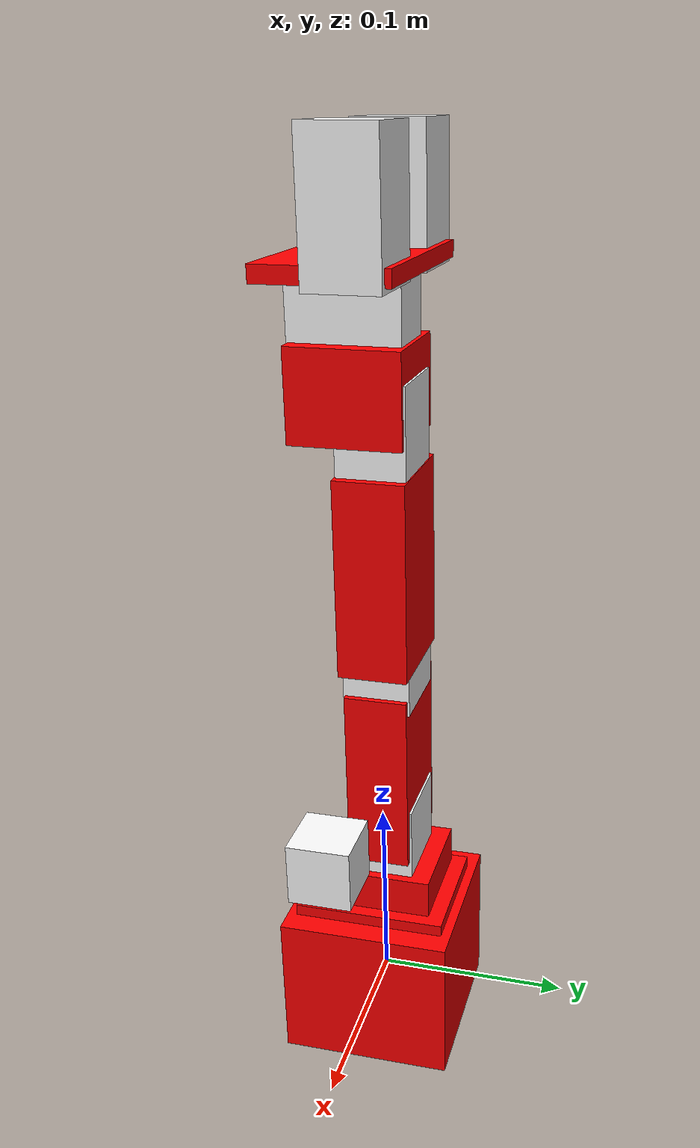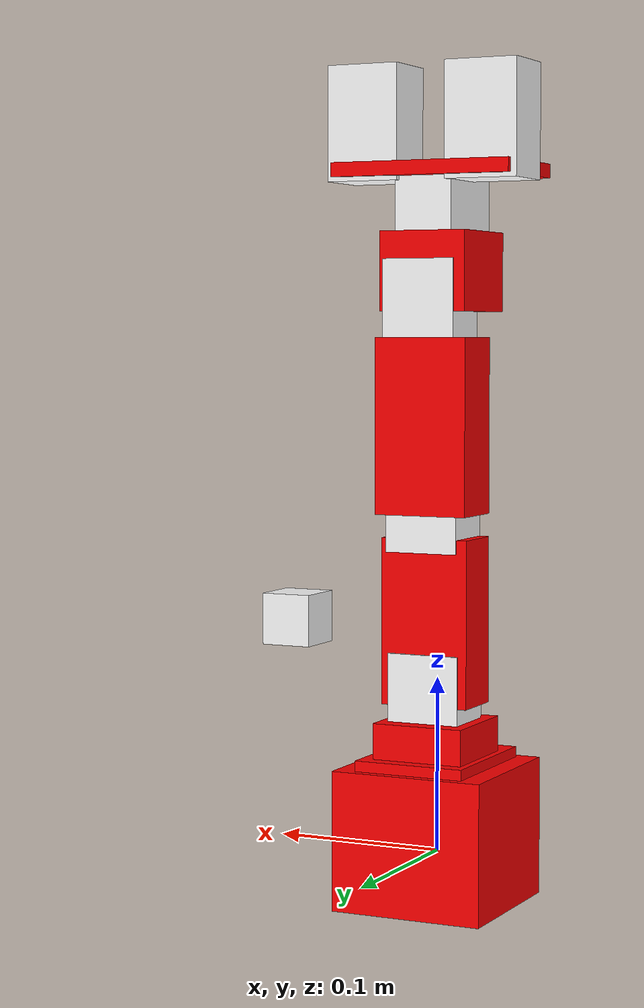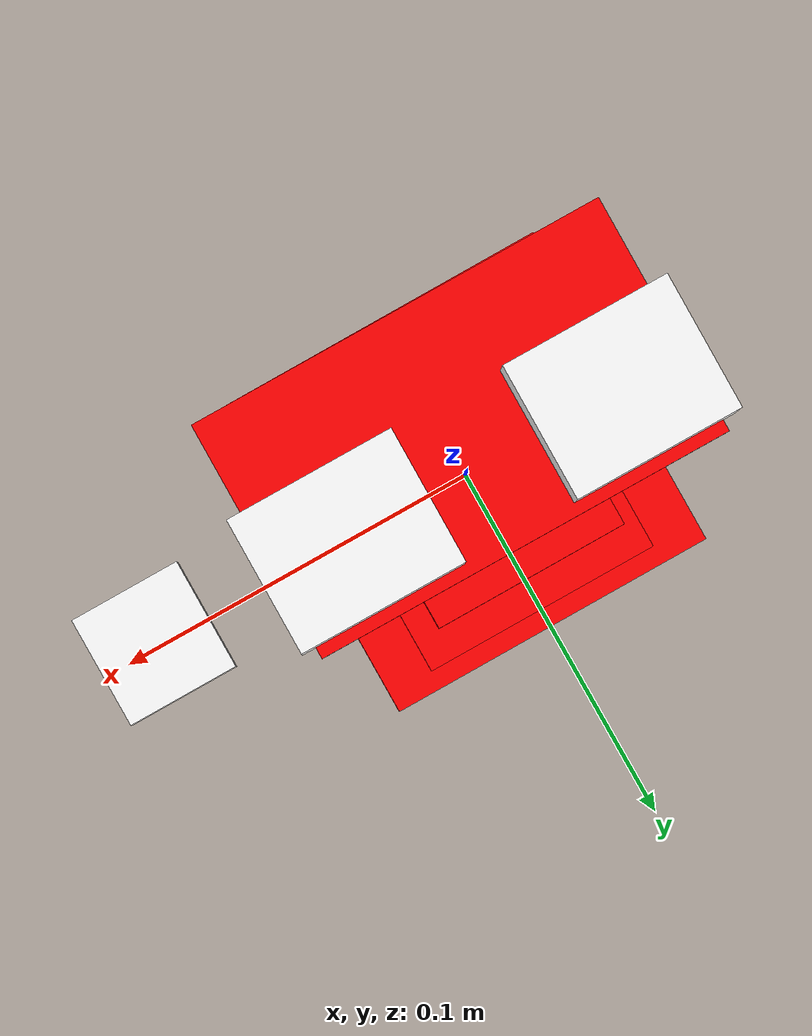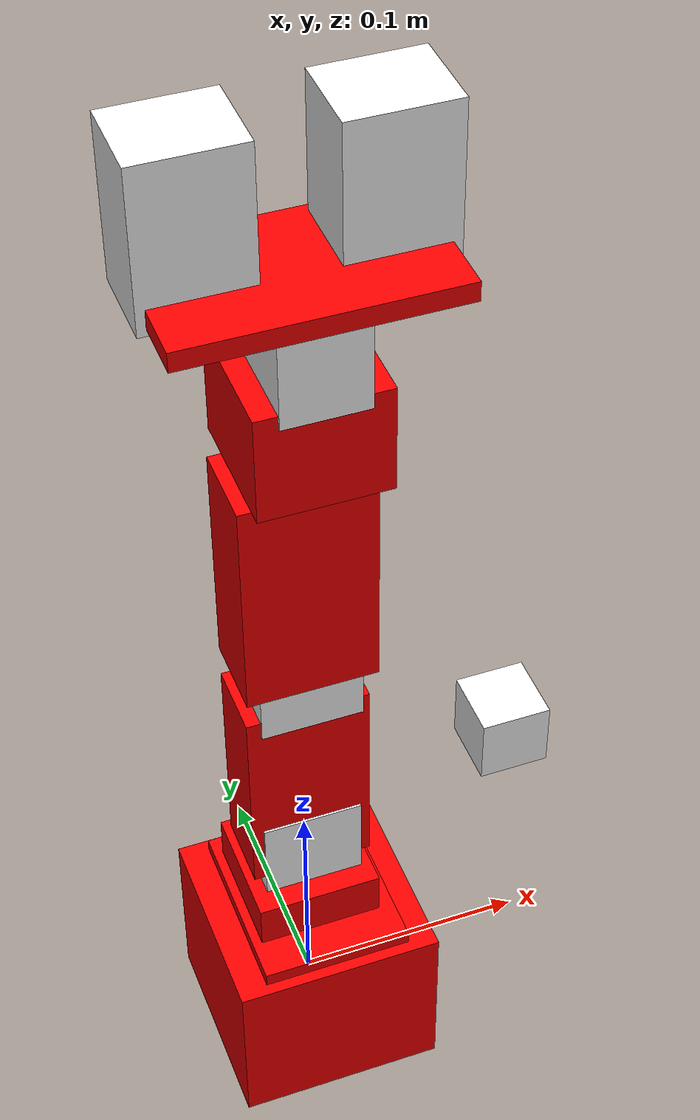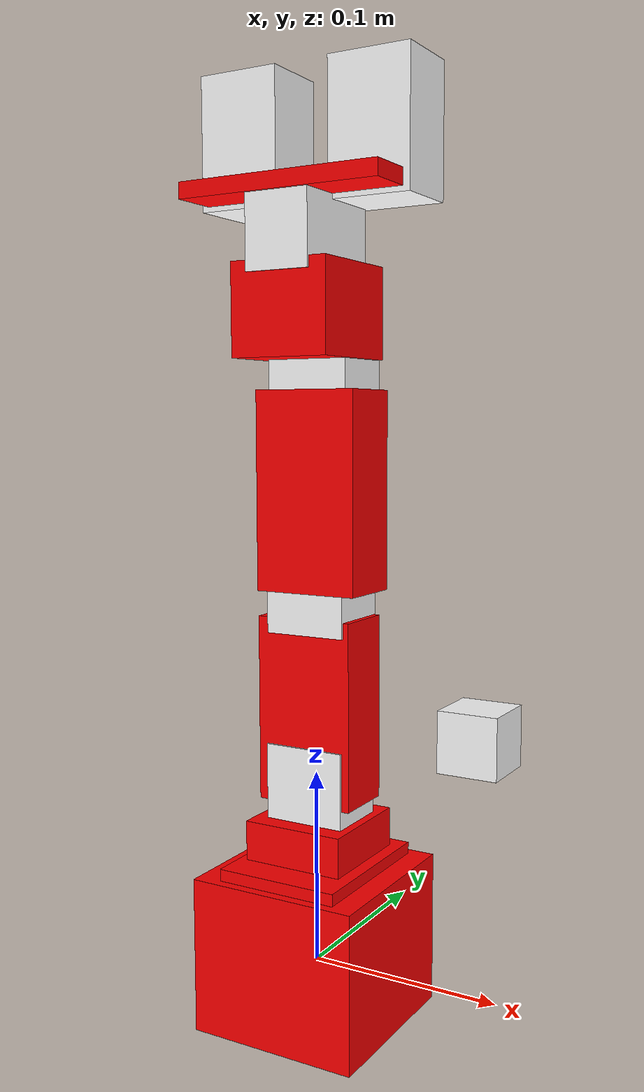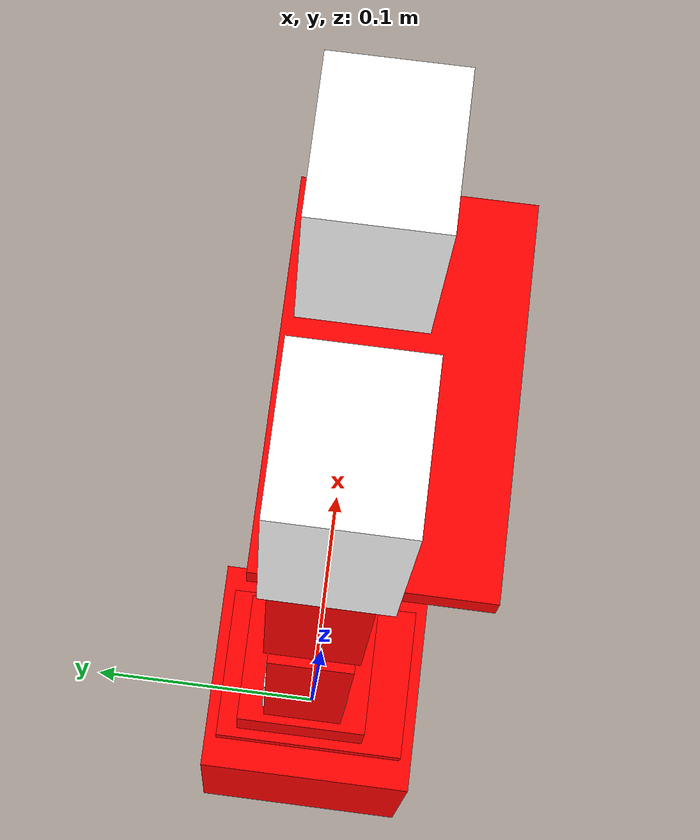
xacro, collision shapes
<?xml version="1.0"?>
<robot xmlns:xacro="http://www.ros.org/wiki/xacro" name="armando">

  <xacro:include filename="$(find armando_description)/urdf/armando_hardware_interface.xacro"/>
  <xacro:include filename="$(find armando_gazebo)/urdf/armando_camera.xacro"/>

  <material name="red">
    <color rgba="1 0 0 1"/>
  </material>

  <material name="white">
    <color rgba="1 1 1 1"/>
  </material>

  <link name="base_link">
    <visual>
      <geometry>
        <mesh filename="package://armando_description/meshes/base_link.stl" scale="0.001 0.001 0.001"/>
      </geometry>
      <origin xyz="0 0 0" rpy="0 0 0"/>
      <material name="red"/>
    </visual>
    <collision>
      <geometry>
        <box size="0.09 0.09 0.08"/>
      </geometry>
      <origin xyz="0 0 0.01" rpy="0 0 0"/>
    </collision>
    <inertial>
      <mass value="0.1"/>
      <origin xyz="0 0 0" rpy="0 0 0"/>
      <inertia ixx="1e-4" ixy="0" ixz="0" iyy="1e-4" iyz="0" izz="1e-4"/>
    </inertial>
  </link>

  <joint name="base_1_2" type="fixed">
    <parent link="base_link"/>
    <child link="base_turn"/>
    <origin xyz="-0.0011 -0.011 0.05" rpy="0 0 0"/>
  </joint>

  <link name="base_turn">
    <visual>
      <geometry>
        <mesh filename="package://armando_description/meshes/base_turn.stl" scale="0.001 0.001 0.001"/>
      </geometry>
      <origin xyz="0 0 0" rpy="0 0 0"/>
      <material name="red"/>
    </visual>
    <collision>
      <geometry>
        <box size="0.065 0.08 0.009"/>
      </geometry>
      <origin xyz="0.0014 0.011 0.0016" rpy="0 0 0"/>
    </collision>
    <inertial>
      <mass value="0.1"/>
      <origin xyz="0 0 0" rpy="0 0 0"/>
      <inertia ixx="1e-4" ixy="0" ixz="0" iyy="1e-4" iyz="0" izz="1e-4"/>
    </inertial>
  </link>

  <joint name="j0" type="revolute">
    <parent link="base_turn"/>
    <child link="base_turn_rot"/>
    <origin xyz="0.0 0.0155 0.013" rpy="0 0 -1.57"/>
    <axis xyz="0 0 1"/>
    <limit effort="300" velocity="0.1" lower="-2.57" upper="2.57"/>
  </joint>

  <link name="base_turn_rot">
    <visual>
      <geometry>
        <mesh filename="package://armando_description/meshes/base_turn_table_rot.stl" scale="0.001 0.001 0.001"/>
      </geometry>
      <material name="red"/>
    </visual>
    <collision>
      <geometry>
        <box size="0.054 0.054 0.022"/>
      </geometry>
      <origin xyz="0.00 0 0.0025" rpy="0 0 0"/>
    </collision>
    <inertial>
      <mass value="0.1"/>
      <origin xyz="0 0 0" rpy="0 0 0"/>
      <inertia ixx="1e-4" ixy="0" ixz="0" iyy="1e-4" iyz="0" izz="1e-4"/>
    </inertial>
  </link>

  <joint name="base_turn_rot_dyn2" type="fixed">
    <parent link="base_turn_rot"/>
    <child link="dyn2"/>
    <origin xyz="0 0 0.0385" rpy="0 1.57 1.57"/>
  </joint>

  <link name="dyn2">
    <visual>
      <geometry>
        <mesh filename="package://armando_description/meshes/dyn.stl" scale="0.01 0.01 0.01"/>
      </geometry>
      <material name="white"/>
    </visual>
    <collision>
      <geometry>
        <box size="0.054 0.034 0.043"/>
      </geometry>
      <origin xyz="0.013 0 0.001" rpy="0 0 0"/>
    </collision>
    <inertial>
      <mass value="0.1"/>
      <origin xyz="0 0 0" rpy="0 0 0"/>
      <inertia ixx="1e-4" ixy="0" ixz="0" iyy="1e-4" iyz="0" izz="1e-4"/>
    </inertial>
  </link>

  <joint name="j1" type="revolute">
    <parent link="dyn2"/>
    <child link="dyn2_r"/>
    <origin xyz="0 0 0.0" rpy="0 0 0"/>
    <axis xyz="0 0 1"/>
    <limit effort="300" velocity="0.1" lower="-3.14" upper="3.14"/>
  </joint>

  <link name="dyn2_r">
    <inertial>
      <mass value="0.001"/>
      <origin xyz="0 0 0" rpy="0 0 0"/>
      <inertia ixx="1e-6" ixy="0" ixz="0" iyy="1e-6" iyz="0" izz="1e-6"/>
    </inertial>
  </link>

  <joint name="dyn2_f4" type="fixed">
    <parent link="dyn2_r"/>
    <child link="f4"/>
    <origin xyz="-0.047 0.0 -0.003" rpy="0 1.57 1.57"/>
  </joint>

  <link name="f4">
    <visual>
      <geometry>
        <mesh filename="package://armando_description/meshes/f4_n_f3.stl" scale="0.001 0.001 0.001"/>
      </geometry>
      <material name="red"/>
    </visual>
    <collision>
      <geometry>
        <box size="0.052 0.095 0.032"/>
      </geometry>
      <origin xyz="-0.0035 -0.015 0" rpy="0 0 0"/>
    </collision>
    <inertial>
      <mass value="0.1"/>
      <origin xyz="0 0 0" rpy="0 0 0"/>
      <inertia ixx="1e-4" ixy="0" ixz="0" iyy="1e-4" iyz="0" izz="1e-4"/>
    </inertial>
  </link>

  <joint name="d4_dyn3" type="fixed">
    <parent link="f4"/>
    <child link="dyn3"/>
    <origin xyz="-0.004 0.0645 0" rpy="-1.57 3.14 1.57"/>
  </joint>

  <link name="dyn3">
    <visual>
      <geometry>
        <mesh filename="package://armando_description/meshes/dyn.stl" scale="0.01 0.01 0.01"/>
      </geometry>
      <material name="white"/>
    </visual>
    <collision>
      <geometry>
        <box size="0.054 0.034 0.043"/>
      </geometry>
      <origin xyz="0.013 0 0.001" rpy="0 0 0"/>
    </collision>
    <inertial>
      <mass value="0.1"/>
      <origin xyz="0 0 0" rpy="0 0 0"/>
      <inertia ixx="1e-4" ixy="0" ixz="0" iyy="1e-4" iyz="0" izz="1e-4"/>
    </inertial>
  </link>

  <joint name="j2" type="revolute">
    <parent link="dyn3"/>
    <child link="dyn3_r"/>
    <origin xyz="0 0 0.0" rpy="0 0 0"/>
    <axis xyz="0 0 1"/>
    <limit effort="300" velocity="0.1" lower="-3.14" upper="3.14"/>
  </joint>

  <link name="dyn3_r">
    <inertial>
      <mass value="0.001"/>
      <origin xyz="0 0 0" rpy="0 0 0"/>
      <inertia ixx="1e-6" ixy="0" ixz="0" iyy="1e-6" iyz="0" izz="1e-6"/>
    </inertial>
  </link>

  <joint name="dyn3_f5" type="fixed">
    <parent link="dyn3_r"/>
    <child link="f5"/>
    <origin xyz="-0.046 -0.0 -0.002" rpy="1.57 1.57 3.1415"/>
  </joint>

  <link name="f5">
    <visual>
      <geometry>
        <mesh filename="package://armando_description/meshes/f4_n_f3.stl" scale="0.001 0.001 0.001"/>
      </geometry>
      <material name="red"/>
    </visual>
    <collision>
      <geometry>
        <box size="0.055 0.1 0.035"/>
      </geometry>
      <origin xyz="-0.0035 -0.015 0" rpy="0 0 0"/>
    </collision>
    <inertial>
      <mass value="0.1"/>
      <origin xyz="0 0 0" rpy="0 0 0"/>
      <inertia ixx="1e-4" ixy="0" ixz="0" iyy="1e-4" iyz="0" izz="1e-4"/>
    </inertial>
  </link>

  <joint name="f5_dyn4" type="fixed">
    <parent link="f5"/>
    <child link="dyn4"/>
    <origin xyz="-0.004 0.065 -0.0" rpy="-1.57 3.1415 1.57"/>
  </joint>

  <link name="dyn4">
    <visual>
      <geometry>
        <mesh filename="package://armando_description/meshes/dyn.stl" scale="0.01 0.01 0.01"/>
      </geometry>
      <material name="white"/>
    </visual>
    <collision>
      <geometry>
        <box size="0.054 0.034 0.043"/>
      </geometry>
      <origin xyz="0.013 0 0.001" rpy="0 0 0"/>
    </collision>
    <inertial>
      <mass value="0.1"/>
      <origin xyz="0 0 0" rpy="0 0 0"/>
      <inertia ixx="1e-4" ixy="0" ixz="0" iyy="1e-4" iyz="0" izz="1e-4"/>
    </inertial>
  </link>

  <joint name="j3" type="revolute">
    <parent link="dyn4"/>
    <child link="dyn4_r"/>
    <origin xyz="0 0 0.0" rpy="0 0 0"/>
    <axis xyz="0 0 1"/>
    <limit effort="300" velocity="0.1" lower="-3.14" upper="3.14"/>
  </joint>

  <link name="dyn4_r">
    <inertial>
      <mass value="0.001"/>
      <origin xyz="0 0 0" rpy="0 0 0"/>
      <inertia ixx="1e-6" ixy="0" ixz="0" iyy="1e-6" iyz="0" izz="1e-6"/>
    </inertial>
  </link>

  <joint name="f5_wrist" type="fixed">
    <parent link="dyn4_r"/>
    <child link="wrist"/>
    <origin xyz="-0.017 -0.013 0.003" rpy="1.57 1.57 -1.57"/>
  </joint>

  <link name="wrist">
    <visual>
      <geometry>
        <mesh filename="package://armando_description/meshes/wrist.stl" scale="0.001 0.001 0.001"/>
      </geometry>
      <material name="red"/>
    </visual>
    <collision>
      <geometry>
        <box size="0.052 0.055 0.045"/>
      </geometry>
      <origin xyz="0.004 -0.0015 -0.01" rpy="0 0 0"/>
    </collision>
    <inertial>
      <mass value="0.1"/>
      <origin xyz="0 0 0" rpy="0 0 0"/>
      <inertia ixx="1e-4" ixy="0" ixz="0" iyy="1e-4" iyz="0" izz="1e-4"/>
    </inertial>
  </link>

  <joint name="wrist_dyn5" type="fixed">
    <parent link="wrist"/>
    <child link="dyn5"/>
    <origin xyz="0.0038 -0.013 0.0275" rpy="0 0 1.57"/>
  </joint>

  <link name="dyn5">
    <visual>
      <geometry>
        <mesh filename="package://armando_description/meshes/dyn.stl" scale="0.01 0.01 0.01"/>
      </geometry>
      <material name="white"/>
    </visual>
    <collision>
      <geometry>
        <box size="0.054 0.034 0.043"/>
      </geometry>
      <origin xyz="0.013 0 0.001" rpy="0 0 0"/>
    </collision>
    <inertial>
      <mass value="0.1"/>
      <origin xyz="0 0 0" rpy="0 0 0"/>
      <inertia ixx="1e-4" ixy="0" ixz="0" iyy="1e-4" iyz="0" izz="1e-4"/>
    </inertial>
  </link>

  <joint name="dyn5_dyn5_r" type="fixed">
    <parent link="dyn5"/>
    <child link="dyn5_r"/>
    <origin xyz="0 0 0.0" rpy="0 0 0"/>
  </joint>

  <link name="dyn5_r">
    <inertial>
      <mass value="0.001"/>
      <origin xyz="0 0 0" rpy="0 0 0"/>
      <inertia ixx="1e-6" ixy="0" ixz="0" iyy="1e-6" iyz="0" izz="1e-6"/>
    </inertial>
  </link>

  <joint name="wrist_rotate_dyn5" type="fixed">
    <parent link="dyn5_r"/>
    <child link="crawer_base"/>
    <origin xyz="0.015 0 0.019" rpy="0 0 1.57"/>
  </joint>

  <link name="crawer_base">
    <visual>
      <geometry>
        <mesh filename="package://armando_description/meshes/the_crawer_base.stl" scale="0.001 0.001 0.001"/>
      </geometry>
      <material name="red"/>
    </visual>
    <collision>
      <geometry>
        <box size="0.108 0.062 0.008"/>
      </geometry>
      <origin xyz="0 0.0045 0.0005" rpy="0 0 0"/>
    </collision>
    <inertial>
      <mass value="0.1"/>
      <origin xyz="0 0 0" rpy="0 0 0"/>
      <inertia ixx="1e-4" ixy="0" ixz="0" iyy="1e-4" iyz="0" izz="1e-4"/>
    </inertial>
  </link>

  <joint name="crawer_base_crawer_left" type="fixed">
    <parent link="crawer_base"/>
    <child link="crawer_left"/>
    <origin xyz="-0.03 0.015 0.01" rpy="0 -1.57 0"/>
  </joint>

  <link name="crawer_left">
    <visual>
      <geometry>
        <mesh filename="package://armando_description/meshes/the_crawer.stl" scale="0.001 0.001 0.001"/>
      </geometry>
      <material name="white"/>
    </visual>
    <collision>
      <geometry>
        <box size="0.065 0.035 0.043"/>
      </geometry>
      <origin xyz="0.0165 0 0.006" rpy="0 0 0"/>
    </collision>
    <inertial>
      <mass value="0.1"/>
      <origin xyz="0 0 0" rpy="0 0 0"/>
      <inertia ixx="1e-4" ixy="0" ixz="0" iyy="1e-4" iyz="0" izz="1e-4"/>
    </inertial>
  </link>

  <joint name="crawer_base_crawer_right" type="fixed">
    <parent link="crawer_base"/>
    <child link="crawer_right"/>
    <origin xyz="0.03 0.015 0.01" rpy="3.1415 -1.57 0"/>
  </joint>

  <link name="crawer_right">
    <visual>
      <geometry>
        <mesh filename="package://armando_description/meshes/the_crawer.stl" scale="0.001 0.001 0.001"/>
      </geometry>
      <material name="white"/>
    </visual>
    <collision>
      <geometry>
        <box size="0.065 0.035 0.043"/>
      </geometry>
      <origin xyz="0.0165 0 0.006" rpy="0 0 0"/>
    </collision>
    <inertial>
      <mass value="0.1"/>
      <origin xyz="0 0 0" rpy="0 0 0"/>
      <inertia ixx="1e-4" ixy="0" ixz="0" iyy="1e-4" iyz="0" izz="1e-4"/>
    </inertial>
  </link>

    <joint name="camera_joint" type="fixed">
    <parent link="base_link"/>
    <child link="camera_link"/>
    <origin xyz="0.09 0.0 0.13" rpy="0 0 0"/>
  </joint>

  <link name="camera_link">
    <visual>
      <geometry>
        <box size="0.03 0.03 0.03"/>
      </geometry>
      <origin xyz="0 0 0" rpy="0 0 0"/>
      <material name="white"/>
    </visual>
    <collision>
      <geometry>
        <box size="0.03 0.03 0.03"/>
      </geometry>
      <origin xyz="0 0 0" rpy="0 0 0"/>
    </collision>
    <inertial>
      <mass value="0.01"/>
      <origin xyz="0 0 0" rpy="0 0 0"/>
      <inertia ixx="1e-6" ixy="0" ixz="0" iyy="1e-6" iyz="0" izz="1e-6"/>
    </inertial>
  </link>

  <xacro:armando_camera
    camera_link="camera_link"
    camera_name="armando_camera"
    fov="1.047"
    width_res="320"
    height_res="240"
    near="0.1"
    far="100"
    topic_name="camera"/>

  <ros2_control name="IgnitionSystem" type="system">
    <hardware>
      <plugin>ign_ros2_control/IgnitionSystem</plugin>
    </hardware>

    <xacro:armando_hardware_interface joint_name="j0"/>
    <xacro:armando_hardware_interface joint_name="j1"/>
    <xacro:armando_hardware_interface joint_name="j2"/>
    <xacro:armando_hardware_interface joint_name="j3"/>
  </ros2_control>

  <gazebo>
    <plugin filename="ign_ros2_control-system"
            name="ign_ros2_control::IgnitionROS2ControlPlugin">
      <parameters>$(find armando_description)/config/armando_controllers.yaml</parameters>
      <controller_manager_node_name>controller_manager</controller_manager_node_name>
    </plugin>
  </gazebo>

</robot>
